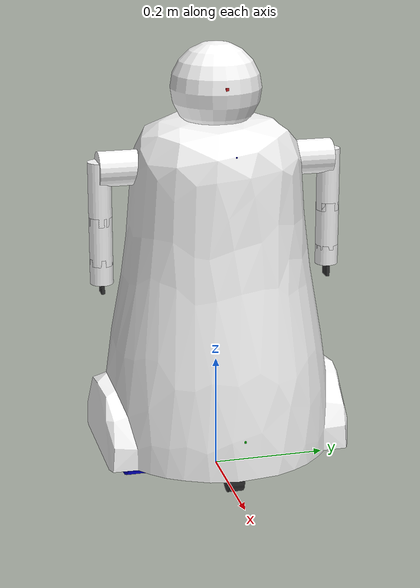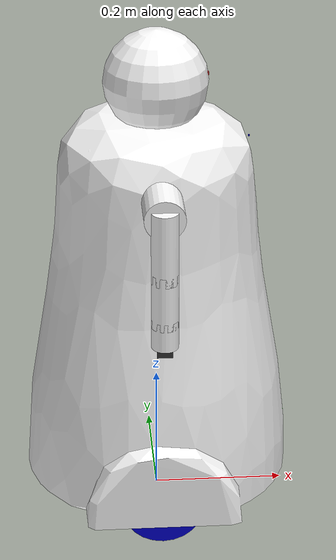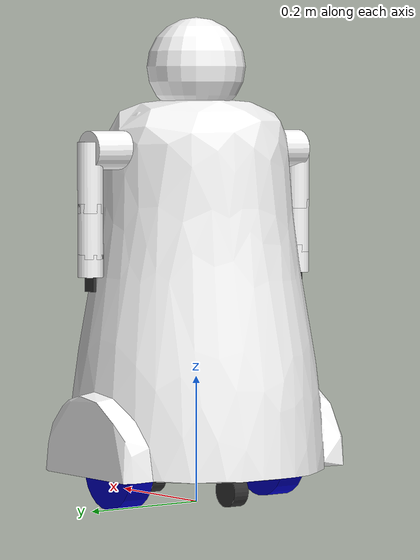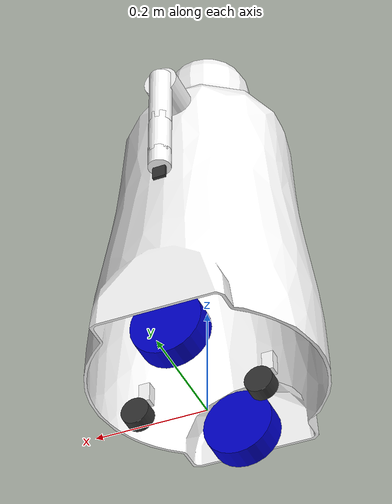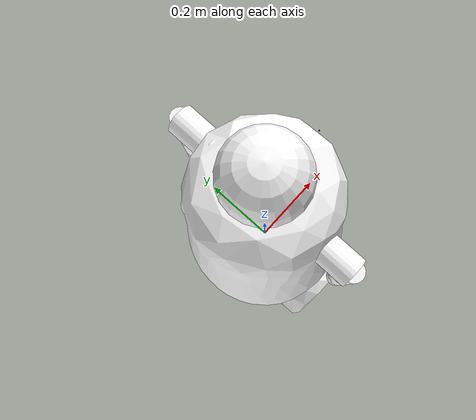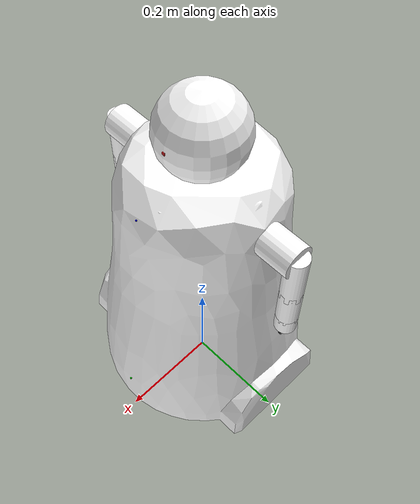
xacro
<?xml version="1.0"?>
<robot name="arca3" xmlns:xacro="http://www.ros.org/wiki/xacro">

    <!-- BGN - Include -->
    <xacro:include filename="$(find arca3_description)/urdf/gazebo.xacro" />

    <!-- Inluir archivos de materiales y colores-->
    <material name="blue">
        <color rgba="0 0 0.8 1"/>
    </material>

    <material name="green">
        <color rgba="0.0 0.8 0.0 1.0"/>
    </material>

    <material name="black">
        <color rgba="0.0 0.0 0.0 1.0"/>
    </material>

    <material name="white">
        <color rgba="1.0 1.0 1.0 1.0"/>
    </material>

    <material name="red">
        <color rgba="0.80078125 0.12890625 0.1328125 1.0"/>
    </material>

    <material name="grey">
        <color rgba="0.2 0.2 0.2 1.0"/>
    </material>

    <!-- END - Include -->

    <!--                 PROPERTIES                  -->
    <!-- Caster wheels property -->
    <xacro:property name="cwm" value="0.5" />                                   <!-- cwm: caster wheel mass, [kg] -->
    <xacro:property name="cwd" value="0.05" />                                  <!-- cwd: caster wheel diameter, [m]  -->
    <xacro:property name="cwr" value="${cwd/2}" />                              <!-- cwr: caster wheel radius, [m]  -->
    <xacro:property name="cwo" value="0.015" />                                 <!-- cwo: caster wheel offset, [m]  -->
    <xacro:property name="cwt" value="0.027" />                                 <!-- cwt: caster wheel tread, [m]  -->
    <xacro:property name="cwh" value="0.06" />                                  <!-- cwh: caster wheel heat, [m]  -->

    <xacro:property name="cw_ixx" value="${(cwm/12.0)*(3*cwr*cwr+cwt*cwt)}" />  <!-- cw_ixx: caster wheel inertia x axis, [kgm^2]  -->
    <xacro:property name="cw_iyy" value="${cw_ixx}" />                          <!-- cw_iyy: caster wheel inertia y axis, [kgm^2]  -->
    <xacro:property name="cw_izz" value="${(cwm*cwr*cwr)/2.0}" />               <!-- cw_izz: caster wheel inertia z axis, [kgm^2]  -->

    <xacro:property name="yc_dist" value="0.149" />                             <!-- yc_dist: distance from the origin to the wheel along the y axis, [m]  -->

    <!-- Driving wheels property -->
    <xacro:property name="dwm" value="0.6" />                                   <!-- dwm: driving wheel mass, [kg] -->
    <xacro:property name="dwd" value="0.125" />                                 <!-- dwd: driving wheel diameter, [m]  -->
    <xacro:property name="dwr" value="${dwd/2}" />                              <!-- dwr: driving wheel radius, [m]  -->
    <xacro:property name="dwt" value="0.044" />                                 <!-- dwt: driving wheel tread, [m]  -->

    <xacro:property name="dw_ixx" value="${(dwm/12.0)*(3*dwr*dwr+dwt*dwt)}" />  <!-- dw_ixx: driving wheel inertia x axis, [kgm^2]  -->
    <xacro:property name="dw_iyy" value="${dw_ixx}" />                          <!-- dw_iyy: driving wheel inertia y axis, [kgm^2]  -->
    <xacro:property name="dw_izz" value="${(dwm*dwr*dwr)/2.0}" />               <!-- dw_izz: driving wheel inertia z axis, [kgm^2]  -->

    <xacro:property name="xd_dist" value="0.11" />                              <!-- xd_dist: distance from the origin to the wheel along the x axis, [m]  -->

    <!-- chassis property -->
    <xacro:property name="cm" value="10.0" />                                   <!-- cm: chassis mass, [kg] -->
    <xacro:property name="clod" value="0.300" />                                <!-- clod: chassis longitudinal dimension, [m]  -->
    <xacro:property name="clad" value="0.240" />                                <!-- clad: chassis lateral dimension, [m]  -->
    <xacro:property name="ch" value="1" />                                      <!-- ch: chassis height, [m]  -->

    <xacro:property name="c_ixx" value="500.0" />      <!-- c_ixx: chassis inertia x axis, [kgm^2]  -->
    <xacro:property name="c_iyy" value="500.0" />      <!-- c_iyy: chassis inertia y axis, [kgm^2]  -->
    <xacro:property name="c_izz" value="500.0" />  <!-- c_izz: chassis inertia z axis, [kgm^2]  -->

    <xacro:property name="zch_dist" value="0.105" />                            <!-- zch_dist: distance from the ground to the bottom of the chasis, [m]  -->

    <!-- caster_wheel_link property -->
    <xacro:property name="cwlm" value="0.050" />                                <!-- cwlm: caster wheel link mass, [kg] -->
    <xacro:property name="cwlh" value="${(cwh-cwr)}" />                         <!-- cwlh: caster wheel link height, [m]  -->

    <!-- Sensors -->
    <xacro:property name="laser_len" value="0.003" />                           <!-- laser_len: length of the laser (it's a cube), [m]-->
    <xacro:property name="dcam_len" value="0.002" />                            <!-- dcam_len: length of the depth camera (it's a cube), [m]-->
    <xacro:property name="camera_len" value="0.005" />                          <!-- camera_len: length of the camera (it's a cube), [m] -->

    <!--                    MACROS                   -->
    <!-- caster_wheel_link macro -->
    <xacro:macro name="caster_wheel_link" params="number colour">

        <link name="caster_wheel_M${number}_link">

            <visual>
                <origin xyz="0 0 0" rpy="0 0 0"/>
                <geometry>
                    <box size="0.020 0.02 ${cwlh}"/>
                </geometry>
                <material name="white"/>
            </visual>

            <collision>
                <origin xyz="0 0 0" rpy="0 0 0"/>
                <geometry>
                    <box size="0.020 0.020 ${cwlh}"/>
                </geometry>
            </collision>

            <inertial>
                <origin xyz="0 0 0" rpy="0 0 0"/>
                <mass value="${cwlm}" />
                <inertia ixx="0" ixy="0.0" ixz="0.0" iyy="0" iyz="0.0" izz="0"/>
            </inertial>

        </link>

        <gazebo reference="caster_wheel_M${number}_link">
            <kp>10000.0</kp>
            <kd>10000.0</kd>
            <mu1>10.0</mu1>
            <mu2>10.0</mu2>
            <material>Gazebo/Grey</material>
        </gazebo>

        <link name="wheel_M${number}_link">

            <visual>
                <origin xyz="0 0 0" rpy="0 0 0"/>
                <geometry>
                    <cylinder length="${cwt}" radius="${cwr}"/>
                </geometry>
                <material name="grey"/>
            </visual>

            <collision>
                <origin xyz="0 0 0" rpy="0 0 0"/>
                <geometry>
                    <cylinder length="${cwt}" radius="${cwr}"/>
                </geometry>
            </collision>

            <inertial>
                <origin xyz="0 0 0" rpy="0 0 0"/>
                <mass value="${cwm}" />
                <inertia ixx="${cw_ixx}" ixy="0.0" ixz="0.0" iyy="${cw_iyy}" iyz="0.0" izz="${cw_izz}"/>
            </inertial>

        </link>

        <gazebo reference="wheel_M${number}_link">
            <kp>10000.0</kp>
            <kd>10000.0</kd>
            <mu1>10.0</mu1>
            <mu2>10.0</mu2>
            <material>Gazebo/${colour}</material>
        </gazebo>

        <joint name="caster_wheel_M${number}_wheel_M${number}_joint" type="continuous">
            <parent link="caster_wheel_M${number}_link"/>
            <child link="wheel_M${number}_link"/>
            <origin xyz="${cwo} 0 ${-cwlh}" rpy="1.570796 0 0"/>
            <limit  effort="1.0" velocity="0.005"/>
            <axis xyz="0 0 1"/>
        </joint>

    </xacro:macro>

    <!-- driving_wheel_link macro -->
    <xacro:macro name="driving_wheel_link" params="number colour">

        <link name="driving_wheel_M${number}_link">

            <visual>
                <origin xyz="0 0 0" rpy="0 0 0"/>
                <geometry>
                    <cylinder length="${dwt}" radius="${dwr}"/>
                </geometry>
                <material name="blue"/>
            </visual>

            <collision>
                <origin xyz="0 0 0" rpy="0 0 0"/>
                <geometry>
                    <cylinder length="${dwt}" radius="${dwr}"/>
                </geometry>
            </collision>

            <inertial>
                <origin xyz="0 0 0" rpy="0 0 0"/>
                <mass value="${dwm}" />
                <inertia ixx="${dw_ixx}" ixy="0.0" ixz="0.0" iyy="${dw_iyy}" iyz="0.0" izz="${dw_izz}"/>
            </inertial>

        </link>

        <gazebo reference="driving_wheel_M${number}_link">
            <kp>10000.0</kp>
            <kd>10000.0</kd>
            <mu1>10.0</mu1>
            <mu2>10.0</mu2>
            <material>Gazebo/${colour}</material>
        </gazebo>

    </xacro:macro>

    <!-- arm link macro -->
    <xacro:macro name="m_link_cylinder" params="name origin_xyz origin_rpy length radius mass ixx ixy ixz iyy iyz izz vis_material">
        <link name="${name}">
        <inertial>
            <mass value="${mass}" />
            <origin rpy="${origin_rpy}" xyz="${origin_xyz}" />
            <inertia ixx="${ixx}" ixy="${ixy}" ixz="${ixz}" iyy="${iyy}" iyz="${iyz}" izz="${izz}" />
        </inertial>
        <collision>
            <origin rpy="${origin_rpy}" xyz="${origin_xyz}" />
            <geometry>
            <cylinder length="${length}" radius="${radius}"/>
            </geometry>
        </collision>
        <visual>
            <origin rpy="${origin_rpy}" xyz="${origin_xyz}" />
            <geometry>
            <cylinder length="${length}" radius="${radius}"/>
            </geometry>
            <material name="${vis_material}"/>
        </visual>
        </link>
    </xacro:macro>

    <!-- joint base-arm macro -->
    <xacro:macro name="m_joint" params="name type axis_xyz origin_rpy origin_xyz parent child limit_e limit_l limit_u limit_v">
        <joint name="${name}" type="${type}">
            <axis xyz="${axis_xyz}" />
            <limit effort="${limit_e}" lower="${limit_l}" upper="${limit_u}" velocity="${limit_v}" />
            <origin rpy="${origin_rpy}" xyz="${origin_xyz}" />
            <parent link="${parent}" />
            <child link="${child}" />
        </joint>
        <transmission name="trans_${name}">
            <type>transmission_interface/SimpleTransmission</type>
            <joint name="${name}">
                <hardwareInterface>hardware_interface/EffortJointInterface</hardwareInterface>
            </joint>
            <actuator name="motor_${name}">
                <hardwareInterface>hardware_interface/EffortJointInterface</hardwareInterface>
                <mechanicalReduction>1</mechanicalReduction>
            </actuator>
        </transmission>
    </xacro:macro>

    <!-- gripper box macro -->
    <xacro:macro name="m_link_box" params="name origin_xyz origin_rpy size mass ixx ixy ixz iyy iyz izz vis_material">
        <link name="${name}">
            <inertial>
                <mass value="${mass}" />
                <origin rpy="${origin_rpy}" xyz="${origin_xyz}" />
                <inertia ixx="${ixx}" ixy="${ixy}" ixz="${ixz}" iyy="${iyy}" iyz="${iyz}" izz="${izz}" />
            </inertial>
            <collision>
                <origin rpy="${origin_rpy}" xyz="${origin_xyz}" />
                <geometry>
                    <box size="${size}" />
                </geometry>
            </collision>
            <visual>
                <origin rpy="${origin_rpy}" xyz="${origin_xyz}" />
                <geometry>
                    <box size="${size}" />
                </geometry>
                <material name="${vis_material}"/>
            </visual>
        </link>
    </xacro:macro>

    <!-- driving wheel transmission -->

    <!--              ROBOT DESCRIPTION              -->
    <!-- Chassis -->
    <link name="base_link">
        <visual>
            <origin xyz="0 0 ${zch_dist}" rpy="0 0 0"/>
            <geometry>
                <mesh filename="package://arca3_description/urdf/meshes/Estructura_arca.stl" scale="0.01 0.01 0.01"/>
            </geometry>
            <material name="white"/>
        </visual>

        <collision>
            <origin xyz="0 0 ${zch_dist}" rpy="0 0 0"/>
            <geometry>
                <mesh filename="package://arca3_description/urdf/meshes/Estructura_arca.stl" scale="0.01 0.01 0.01"/>
            </geometry>
        </collision>

        <inertial>
            <origin xyz="0 0 ${zch_dist}" rpy="0 0 0"/>
            <mass value="${cm}"/>
            <inertia ixx="${c_ixx}" ixy="0.0" ixz="0.0" iyy="${c_iyy}" iyz="0.0" izz="${c_izz}"/>
        </inertial>
    </link>

    <!-- Caster wheels and link -->
    <xacro:caster_wheel_link number="1" colour="Grey"/>
    <xacro:caster_wheel_link number="2" colour="Grey"/>

    <!-- Joint among chassis and caster wheels -->
    <joint name="base_link_caster_wheel_M1_joint" type="continuous">
    	<parent link="base_link"/>
    	<child link="caster_wheel_M1_link"/>
        <origin xyz="${xd_dist} 0 ${dwr}" rpy="0 0 0"/>
        <limit effort="1.0" velocity="1"/>
        <axis xyz="0 0 1"/>
	</joint>

    <joint name="base_link_caster_wheel_M2_joint" type="continuous">
    	<parent link="base_link"/>
    	<child link="caster_wheel_M2_link"/>
        <origin xyz="-${xd_dist} 0 ${dwr}" rpy="0 0 0"/>
        <limit effort="1.0" velocity="1"/>
        <axis xyz="0 0 1"/>
	</joint>

    <!-- Driving wheels -->
    <xacro:driving_wheel_link number="1" colour="Blue"/>
    <xacro:driving_wheel_link number="2" colour="Blue"/>

    <!-- Joint among chassis and driving wheels -->
    <joint name="joint_base_link_driving_wheel_M1" type="continuous">
    	<parent link="base_link"/>
    	<child link="driving_wheel_M1_link"/>
        <origin xyz="0 -${yc_dist} ${dwr}" rpy="1.57 0 0"/>
        <limit effort="15.0" velocity="0.1"/>
        <axis xyz="0 0 -1"/>
	</joint>

    <joint name="joint_base_link_driving_wheel_M2" type="continuous">
    	<parent link="base_link"/>
    	<child link="driving_wheel_M2_link"/>
        <origin xyz="0 ${yc_dist} ${dwr}" rpy="1.57 0 0"/>
        <limit effort="15.0" velocity="0.1"/>
        <axis xyz="0 0 -1"/>
	</joint>

    <!--                 LEFT ARM                     -->

    <!-- Link1: Left arm arca -->
    <m_link_cylinder name="la_link1"
                     origin_xyz="0 0.02 0" origin_rpy="1.5708 0 0"
                     length="0.09" radius="0.03"
                     mass="1"
                     ixx="1.3235" ixy="0" ixz="0"
                     iyy="1.3235" iyz="0"
                     izz="0.9655"
                     vis_material="white"/>

    <!-- Joint1: base_link - Link1 -->
    <m_joint name="joint_base_to_lalink1" type="revolute"
             axis_xyz="0 1 0"
             origin_rpy="0 0 0" origin_xyz="0 0.14 0.56"
             parent="base_link" child="la_link1"
             limit_e="10000" limit_l="-3.229" limit_u="0.349" limit_v="0.6" />

    <!-- Link2: Brazo arca -->
    <m_link_cylinder name="la_link2"
                     origin_xyz="0 0.0 -0.042" origin_rpy="0 0 0"
                     length="0.11" radius="0.02"
                     mass="1"
                     ixx="1.3235" ixy="0" ixz="0"
                     iyy="1.3235" iyz="0"
                     izz="0.9655"
                     vis_material="white"/>

    <!-- Joint2: Link1 - Link2 -->
    <m_joint name="joint_lalink1_to_lalink2" type="revolute"
             axis_xyz="1 0 0"
             origin_rpy="0 0 0" origin_xyz="0 0.062 0"
             parent="la_link1" child="la_link2"
             limit_e="10000" limit_l="-0.175" limit_u="1.745" limit_v="0.6" />

    <!-- Link3: Brazo arca -->
    <m_link_cylinder name="la_link3"
                     origin_xyz="0 0.0 -0.028" origin_rpy="0 0 0"
                     length="0.085" radius="0.02"
                     mass="1"
                     ixx="1.3235" ixy="0" ixz="0"
                     iyy="1.3235" iyz="0"
                     izz="0.9655"
                     vis_material="white"/>

    <!-- Joint3: Link2 - Link3 -->
    <m_joint name="joint_lalink2_to_lalink3" type="revolute"
             axis_xyz="0 1 0"
             origin_rpy="0 0 0" origin_xyz="0 0 -0.097"
             parent="la_link2" child="la_link3"
             limit_e="10000" limit_l="-2.094" limit_u="0.0" limit_v="0.6" />

    <!-- Link4: Brazo arca -->
    <m_link_cylinder name="la_link4"
                     origin_xyz="0 0.0 -0.017" origin_rpy="0 0 0"
                     length="0.035" radius="0.02"
                     mass="1"
                     ixx="1.3235" ixy="0" ixz="0"
                     iyy="1.3235" iyz="0"
                     izz="0.9655"
                     vis_material="white"/>

    <!-- Joint4: Link3 - Link4 -->
    <m_joint name="joint_lalink3_to_lalink4" type="revolute"
             axis_xyz="0 0 1"
             origin_rpy="0 0 0" origin_xyz="0 0.0 -0.064"
             parent="la_link3" child="la_link4"
             limit_e="10000" limit_l="-3.1416" limit_u="1.5708" limit_v="0.6" />

    <!-- Link5: manito -->
    <m_link_box name="la_link5"
                origin_xyz="0 0.0 -0.002" origin_rpy="0 0 1.5708"
                size="0.006 0.023 0.04" mass="1"
                ixx="1.3235" ixy="0" ixz="0"
                iyy="1.3235" iyz="0"
                izz="0.9655"
                vis_material="grey"/>

    <!-- Joint4: Link4 - Link5 -->
    <m_joint name="joint_lalink4_to_lalink5" type="revolute"
             axis_xyz="1 0 0"
             origin_rpy="0 0 0" origin_xyz="0 0.0 -0.035"
             parent="la_link4" child="la_link5"
             limit_e="10000" limit_l="-0.7854" limit_u="0.0" limit_v="0.6" />

    <!--                 RIGHT ARM                 -->
    <!-- Link1: right arm arca -->
    <m_link_cylinder name="ra_link1"
                     origin_xyz="0 -0.02 0" origin_rpy="1.5708 0 0"
                     length="0.09" radius="0.03"
                     mass="1"
                     ixx="1.3235" ixy="0" ixz="0"
                     iyy="1.3235" iyz="0"
                     izz="0.9655"
                     vis_material="white"/>

    <!-- Joint1: base_link - Link1 -->
    <m_joint name="joint_base_to_ralink1" type="revolute"
             axis_xyz="0 1 0"
             origin_rpy="0 0 0" origin_xyz="0 -0.14 0.56"
             parent="base_link" child="ra_link1"
             limit_e="10000" limit_l="-3.229" limit_u="0.349" limit_v="0.6" />

    <!-- Link2: Brazo arca -->
    <m_link_cylinder name="ra_link2"
                     origin_xyz="0 0.0 -0.042" origin_rpy="0 0 0"
                     length="0.11" radius="0.02"
                     mass="1"
                     ixx="1.3235" ixy="0" ixz="0"
                     iyy="1.3235" iyz="0"
                     izz="0.9655"
                     vis_material="white"/>

    <!-- Joint2: Link1 - Link2 -->
    <m_joint name="joint_ralink1_to_ralink2" type="revolute"
             axis_xyz="1 0 0"
             origin_rpy="0 0 0" origin_xyz="0 -0.062 0"
             parent="ra_link1" child="ra_link2"
             limit_e="10000" limit_l="-1.745" limit_u="0.175" limit_v="0.6" />

    <!-- Link3: Brazo arca -->
    <m_link_cylinder name="ra_link3"
                     origin_xyz="0 0.0 -0.028" origin_rpy="0 0 0"
                     length="0.085" radius="0.02"
                     mass="1"
                     ixx="1.3235" ixy="0" ixz="0"
                     iyy="1.3235" iyz="0"
                     izz="0.9655"
                     vis_material="white"/>

    <!-- Joint3: Link2 - Link3 -->
    <m_joint name="joint_ralink2_to_ralink3" type="revolute"
             axis_xyz="0 1 0"
             origin_rpy="0 0 0" origin_xyz="0 0 -0.097"
             parent="ra_link2" child="ra_link3"
             limit_e="10000" limit_l="-2.094" limit_u="0.0" limit_v="0.6" />

    <!-- Link4: Brazo arca -->
    <m_link_cylinder name="ra_link4"
                     origin_xyz="0 0.0 -0.017" origin_rpy="0 0 0"
                     length="0.045" radius="0.02"
                     mass="1"
                     ixx="1.3235" ixy="0" ixz="0"
                     iyy="1.3235" iyz="0"
                     izz="0.9655"
                     vis_material="white"/>

    <!-- Joint4: Link3 - Link4 -->
    <m_joint name="joint_ralink3_to_ralink4" type="revolute"
             axis_xyz="0 0 1"
             origin_rpy="0 0 0" origin_xyz="0 0.0 -0.064"
             parent="ra_link3" child="ra_link4"
             limit_e="10000" limit_l="-3.1416" limit_u="1.5708" limit_v="0.6" />

    <!-- Link5: manito -->
    <m_link_box name="ra_link5"
                origin_xyz="0 0.0 -0.002" origin_rpy="0 0 1.5708"
                size="0.006 0.023 0.04" mass="1"
                ixx="1.3235" ixy="0" ixz="0"
                iyy="1.3235" iyz="0"
                izz="0.9655"
                vis_material="grey"/>

    <!-- Joint4: Link4 - Link5 -->
    <m_joint name="joint_ralink4_to_ralink5" type="revolute"
             axis_xyz="1 0 0"
             origin_rpy="0 0 0" origin_xyz="0 0.0 -0.035"
             parent="ra_link4" child="ra_link5"
             limit_e="10000" limit_l="0.0" limit_u="0.7854" limit_v="0.6" />

    <!--                      HEAD                    -->

    <!-- Link: Neck-->
    <m_link_cylinder name="link_neck"
                     origin_xyz="0 0 0" origin_rpy="0 0 0"
                     length="0.008" radius="0.005"
                     mass="1"
                     ixx="1.3235" ixy="0" ixz="0"
                     iyy="1.3235" iyz="0"
                     izz="0.9655"
                     vis_material="white"/>

    <!-- Joint1: base_link - Link1 -->
    <m_joint name="joint_base_neck" type="revolute"
             axis_xyz="0 0 1"
             origin_rpy="0 0 0" origin_xyz="0 0 0.635"
             parent="base_link" child="link_neck"
             limit_e="10000" limit_l="-1.222" limit_u="1.222" limit_v="0.6" />

    <!-- Link: Head-->
    <link name="link_head">
        <visual>
            <origin xyz="0 0 0.055" rpy="0 0 0"/>
            <geometry>
                <sphere radius="0.078"/>
            </geometry>
            <material name="white"/>
        </visual>

        <collision>
            <origin xyz="0 0 0.055" rpy="0 0 0"/>
            <geometry>
                <sphere radius="0.078"/>
            </geometry>
        </collision>

        <inertial>
            <origin xyz="0 0 0.055" rpy="0 0 0"/>
            <mass value="0.3"/>
            <inertia ixx="0.01" ixy="0.0" ixz="0.0" iyy="0.01" iyz="0.0" izz="0.01"/>
        </inertial>
    </link>
    <!-- Joint4: head - base_link -->
    <m_joint name="joint_neck_head" type="revolute"
             axis_xyz="0 1 0"
             origin_rpy="0 0 0" origin_xyz="0 0 0"
             parent="link_neck" child="link_head"
             limit_e="10000" limit_l="-0.12" limit_u="0.0" limit_v="0.6" />

    <!-- PLugin - Gazebo drive controller (diff robot)-->
    <gazebo>
        <plugin name="differential_drive_controller" filename="libgazebo_ros_diff_drive.so">
            <alwaysOn>true</alwaysOn>
            <updateRate>30</updateRate>
            <leftJoint>joint_base_link_driving_wheel_M2</leftJoint>
            <rightJoint>joint_base_link_driving_wheel_M1</rightJoint>
            <wheelSeparation>${clad+dwt}</wheelSeparation>
            <wheelDiameter>${dwd}</wheelDiameter>
            <wheelAcceleration>1</wheelAcceleration>
            <wheelTorque>10</wheelTorque>
            <commandTopic>cmd_vel</commandTopic>
            <odometryTopic>odom</odometryTopic>
            <odometryFrame>odom</odometryFrame>
            <robotBaseFrame>base_footprint</robotBaseFrame>
            <publishWheelTF>true</publishWheelTF>
            <publishOdom>true</publishOdom>
            <publishWheelJointState>true</publishWheelJointState>
            <legacyMode>false</legacyMode>
            <rosDebugLevel>false</rosDebugLevel>
            <publishOdomTF>true</publishOdomTF>
            <odometrySource>1</odometrySource>
            <publishTf>1</publishTf>
        </plugin>
    </gazebo>

    <!--                   SENSORS                    -->

    <!-- Sensor Laser in the base -->
    <link name="front_laserscanner_link">
        <visual>
            <origin rpy="0.0 0 0" xyz="0 0 0"/>
            <geometry>
                <box size="${laser_len} ${laser_len} ${laser_len}"/>
            </geometry>
            <material name="green"/>
        </visual>

        <collision>
            <origin rpy="0.0 0 0" xyz="0 0 0"/>
            <geometry>
                <box size="${laser_len} ${laser_len} ${laser_len}"/>
            </geometry>
        </collision>

        <inertial>
            <mass value="1e-5" />
            <origin xyz="0 0 0" rpy="0 0 0"/>
            <inertia ixx="1e-6" ixy="0" ixz="0" iyy="1e-6" iyz="0" izz="1e-6" />
        </inertial>

    </link>

    <joint name="base_front_laserscanner_joint" type="fixed">
        <axis xyz="0 1 0" />
        <parent link="base_link"/>
        <child link="front_laserscanner_link"/>
        <origin xyz="${2*clod/3} 0 ${ch/8}" rpy="0 0 -1.5708"/>
    </joint>

    <!-- Depth sensor at the middle -->
    <link name="front_dcamera_link">
      <visual>
        <origin rpy="0.0 0 0" xyz="0 0 0"/>
        <geometry>
          <box size="${dcam_len} ${dcam_len} ${dcam_len}"/>
        </geometry>
        <material name="blue"/>
      </visual>
    </link>

    <joint name="base_front_dcamera_joint" type="fixed">
      <parent link="base_link"/>
      <child link="front_dcamera_link"/>
      <origin xyz="${23*clod/50} 0 ${3*ch/5}" rpy="0 0 0"/>
    </joint>

    <!-- Camera in the head -->
    <link name="camera_link">
        <visual>
            <origin xyz="0 0 0" rpy="0 0 0"/>
            <geometry>
                <box size="${camera_len} ${camera_len} ${camera_len}"/>
            </geometry>
            <material name="red"/>
        </visual>

        <collision>
            <origin xyz="0 0 0" rpy="0 0 0"/>
            <geometry>
                <box size="${camera_len} ${camera_len} ${camera_len}"/>
            </geometry>
        </collision>

        <inertial>
            <mass value="1e-5" />
            <origin xyz="0 0 0" rpy="0 0 0"/>
            <inertia ixx="1e-6" ixy="0" ixz="0" iyy="1e-6" iyz="0" izz="1e-6" />
        </inertial>
    </link>

    <joint name="camera_joint" type="fixed">
        <axis xyz="0 1 0" />
        <origin xyz="${clod/4} 0 ${7*ch/10}" rpy="0 0 0"/>
        <parent link="base_link"/>
        <child link="camera_link"/>
    </joint>

</robot>
